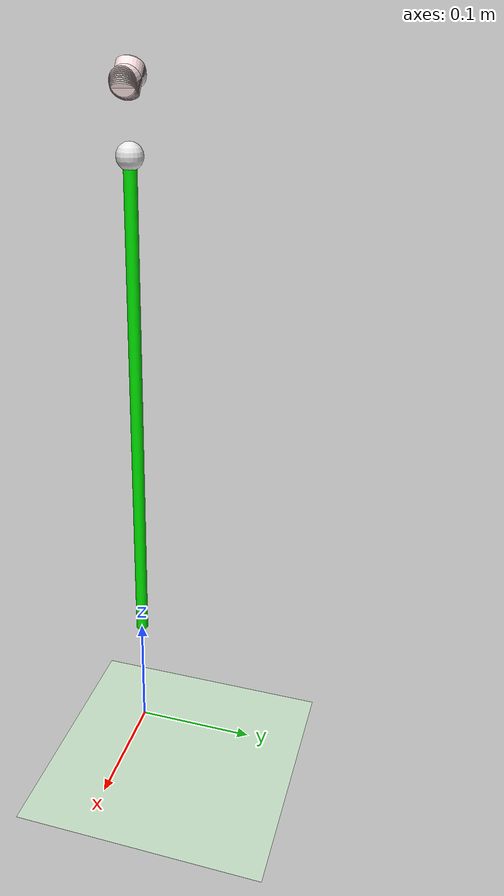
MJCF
<mujoco>
<visual>
<headlight ambient="0.5 0.5 0.5"/>
</visual>

<option timestep="0.001" integrator="RK4" gravity="0 0 -9.81">
<flag sensornoise="disable" contact="enable" energy="enable"/>
</option>

<asset>
	<texture builtin="gradient" height="100" rgb1="1 1 1" rgb2="0 0 0" type="skybox" width="100"/>
	<texture builtin="flat" height="1278" mark="cross" markrgb="1 1 1" name="texgeom" random="0.01" rgb1="0.8 0.6 0.4" rgb2="0.8 0.6 0.4" type="cube" width="127"/>
	<texture builtin="checker" height="100" name="texplane" rgb1="0 0 0" rgb2="0.8 0.8 0.8" type="2d" width="100"/>
	<material name="MatPlane" reflectance="0.1" shininess="0" specular="1" texrepeat="10 10" texture="texplane"/>
	<material name="geom" texture="texgeom" texuniform="true"/>
</asset>

<worldbody>
    <light cutoff="100" diffuse="1 1 1" dir="-0 0 -1.3" directional="true" exponent="1" pos="0 0 1.3" specular=".1 .1 .1"/>
    <geom conaffinity="1" condim="3" material="MatPlane" name="floor" pos="0 0 0" rgba="0.8 0.9 0.8 1" size="40 40 40" type="plane"/>
	<body name="torso" pos="0 0 0.3">
		<site name="range_site_1" pos="0 0 0.25" size="0.01 0.01 0.1" rgba="1 0.9 0.9 1" euler="0 100 0" type="cylinder"/>
		<site name="range_site_2" pos="0 0 0.25" size="0.01 0.01 0.1" rgba="1 0.9 0.9 1" euler="0 105 0" type="cylinder"/>
		<site name="range_site_3" pos="0 0 0.25" size="0.01 0.01 0.1" rgba="1 0.9 0.9 1" euler="0 110 0" type="cylinder"/>
		<site name="range_site_4" pos="0 0 0.25" size="0.01 0.01 0.1" rgba="1 0.9 0.9 1" euler="0 115 0" type="cylinder"/>
		<site name="range_site_5" pos="0 0 0.25" size="0.01 0.01 0.1" rgba="1 0.9 0.9 1" euler="0 120 0" type="cylinder"/>
		<site name="range_site_6" pos="0 0 0.25" size="0.01 0.01 0.1" rgba="1 0.9 0.9 1" euler="0 125 0" type="cylinder"/>
		<site name="range_site_7" pos="0 0 0.25" size="0.01 0.01 0.1" rgba="1 0.9 0.9 1" euler="0 130 0" type="cylinder"/>
		<site name="range_site_8" pos="0 0 0.25" size="0.01 0.01 0.1" rgba="1 0.9 0.9 1" euler="0 135 0" type="cylinder"/>
		<site name="range_site_9" pos="0 0 0.25" size="0.01 0.01 0.1" rgba="1 0.9 0.9 1" euler="0 140 0" type="cylinder"/>
		<site name="range_site_10" pos="0 0 0.25" size="0.01 0.01 0.1" rgba="1 0.9 0.9 1" euler="0 145 0" type="cylinder"/>
		<joint name="x" type="slide" pos="0 0 0" axis="1 0 0" />
		<joint name="z" type="slide" pos="0 0 0" axis="0 0 1" />
		<geom type="sphere" size="0.01" pos="0 0 0.2" rgba=".9 .9 .9 1" mass="1"/>

		<body name="leg" pos="0 0 0" euler="0 0 0">
			<joint name="hip" type="hinge" pos="0 0 0.05" axis="0 -1 0" />
			<geom type="cylinder" size="0.005 .2 0.2" rgba="0 .9 0 1" mass="1"/>
		</body>
	</body>
</worldbody>

<sensor>
	<rangefinder name="rangefinder_1" site="range_site_1" cutoff="2"/>
	<rangefinder name="rangefinder_2" site="range_site_2" cutoff="2"/>
	<rangefinder name="rangefinder_3" site="range_site_3" cutoff="2"/>
	<rangefinder name="rangefinder_4" site="range_site_4" cutoff="2"/>
	<rangefinder name="rangefinder_5" site="range_site_5" cutoff="2"/>
	<rangefinder name="rangefinder_6" site="range_site_6" cutoff="2"/>
	<rangefinder name="rangefinder_7" site="range_site_7" cutoff="2"/>
	<rangefinder name="rangefinder_8" site="range_site_8" cutoff="2"/>
</sensor>
</mujoco>
